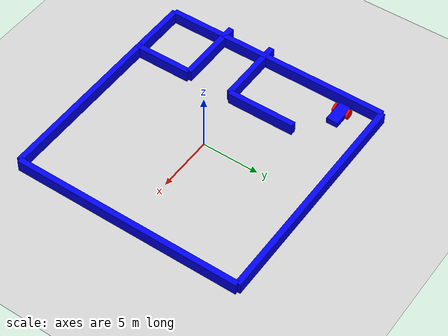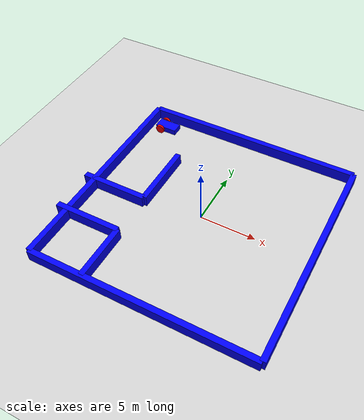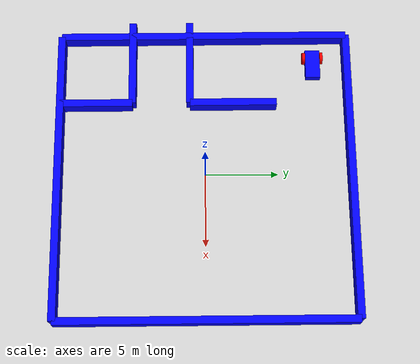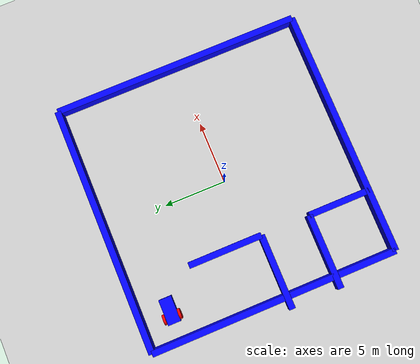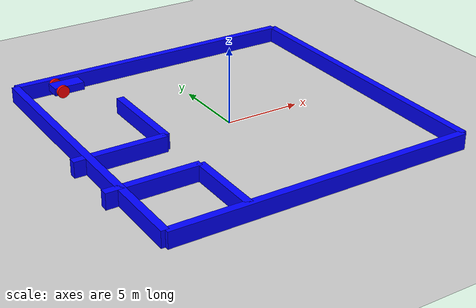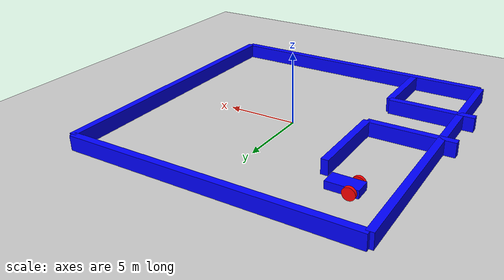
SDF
<?xml version="1.0" ?>
<sdf version="1.8">
    <world name="sensor_world">
        <physics name="1ms" type="ignored">
            <max_step_size>0.001</max_step_size>
            <real_time_factor>1.0</real_time_factor>
        </physics>
        <plugin
            filename="gz-sim-physics-system"
            name="gz::sim::systems::Physics">
        </plugin>
        <plugin
            filename="gz-sim-user-commands-system"
            name="gz::sim::systems::UserCommands">
        </plugin>
        <plugin
            filename="gz-sim-scene-broadcaster-system"
            name="gz::sim::systems::SceneBroadcaster">
        </plugin>
        <plugin
            filename="gz-sim-imu-system"
            name="gz::sim::systems::Imu">
        </plugin>
        <plugin
            filename="gz-sim-sensors-system"
            name="gz::sim::systems::Sensors">
            <render_engine>ogre2</render_engine>
        </plugin>
        <plugin
            filename="gz-sim-contact-system"
            name="gz::sim::systems::Contact">
        </plugin>

        <light type="directional" name="sun">
            <cast_shadows>true</cast_shadows>
            <pose>0 0 10 0 0 0</pose>
            <diffuse>0.8 0.8 0.8 1</diffuse>
            <specular>0.2 0.2 0.2 1</specular>
            <attenuation>
                <range>1000</range>
                <constant>0.9</constant>
                <linear>0.01</linear>
                <quadratic>0.001</quadratic>
            </attenuation>
            <direction>-0.5 0.1 -0.9</direction>
        </light>

        <model name="ground_plane">
            <static>true</static>
            <link name="link">
                <collision name="collision">
                <geometry>
                    <plane>
                    <normal>0 0 1</normal>
                    </plane>
                </geometry>
                </collision>
                <visual name="visual">
                <geometry>
                    <plane>
                    <normal>0 0 1</normal>
                    <size>100 100</size>
                    </plane>
                </geometry>
                <material>
                    <ambient>0.8 0.8 0.8 1</ambient>
                    <diffuse>0.8 0.8 0.8 1</diffuse>
                    <specular>0.8 0.8 0.8 1</specular>
                </material>
                </visual>
            </link>
        </model>

        <model name='vehicle_blue' canonical_link='chassis'>
            <pose relative_to='world'>-8 7.5 1 0 0 0</pose>   <!--the pose is relative to the world by default-->

            <frame name="lidar_frame" attached_to='chassis'>
                <pose>0.8 0 0.5 0 0 0</pose>
            </frame>

            <link name='chassis'>
                <pose relative_to='__model__'>0.5 0 0.4 0 0 0</pose>
                <inertial> <!--inertial properties of the link mass, inertia matix-->
                    <mass>1.14395</mass>
                    <inertia>
                        <ixx>0.126164</ixx>
                        <ixy>0</ixy>
                        <ixz>0</ixz>
                        <iyy>0.416519</iyy>
                        <iyz>0</iyz>
                        <izz>0.481014</izz>
                    </inertia>
                </inertial>
                <visual name='visual'>
                    <geometry>
                        <box>
                            <size>2.0 1.0 0.5</size> <!--question: this size is in meter-->
                        </box>
                    </geometry>
                    <!--let's add color to our link-->
                    <material>
                        <ambient>0.0 0.0 1.0 1</ambient>
                        <diffuse>0.0 0.0 1.0 1</diffuse>
                        <specular>0.0 0.0 1.0 1</specular>
                    </material>
                </visual>
                <collision name='collision'> <!--todo: describe why we need the collision-->
                    <geometry>
                        <box>
                            <size>2.0 1.0 0.5</size>
                        </box>
                    </geometry>
                </collision>
                <sensor name="imu_sensor" type="imu">
                    <always_on>1</always_on>
                    <update_rate>1</update_rate>
                    <visualize>true</visualize>
                    <topic>imu</topic>
                </sensor>
                <sensor name='gpu_lidar' type='gpu_lidar'>"
                    <pose relative_to='lidar_frame'>0 0 0 0 0 0</pose>
                    <topic>scan</topic>
                    <update_rate>10</update_rate>
                    <ray>
                        <scan>
                            <horizontal>
                            <samples>640</samples>
                            <resolution>1</resolution>
                            <min_angle>-1.396263</min_angle>
                            <max_angle>1.396263</max_angle>
                            </horizontal>
                            <vertical>
                            <samples>1</samples>
                            <resolution>0.01</resolution>
                            <min_angle>0</min_angle>
                            <max_angle>0</max_angle>
                            </vertical>
                        </scan>
                    <range>
                        <min>0.08</min>
                        <max>10.0</max>
                        <resolution>0.01</resolution>
                    </range>
                    </ray>
                    <always_on>1</always_on>
                    <visualize>true</visualize>
                </sensor>
            </link>

            <!--let's build the left wheel-->
            <link name='left_wheel'>
                <pose relative_to="chassis">-0.5 0.6 0 -1.5707 0 0</pose> <!--angles are in radian-->
                <inertial>
                    <mass>2</mass>
                    <inertia>
                        <ixx>0.145833</ixx>
                        <ixy>0</ixy>
                        <ixz>0</ixz>
                        <iyy>0.145833</iyy>
                        <iyz>0</iyz>
                        <izz>0.125</izz>
                    </inertia>
                </inertial>
                <visual name='visual'>
                    <geometry>
                        <cylinder>
                            <radius>0.4</radius>
                            <length>0.2</length>
                        </cylinder>
                    </geometry>
                    <material>
                        <ambient>1.0 0.0 0.0 1</ambient>
                        <diffuse>1.0 0.0 0.0 1</diffuse>
                        <specular>1.0 0.0 0.0 1</specular>
                    </material>
                </visual>
                <collision name='collision'>
                    <geometry>
                        <cylinder>
                            <radius>0.4</radius>
                            <length>0.2</length>
                        </cylinder>
                    </geometry>
                </collision>
            </link>

            <!--copy and paste for right wheel but change position-->
            <link name='right_wheel'>
                <pose relative_to="chassis">-0.5 -0.6 0 -1.5707 0 0</pose> <!--angles are in radian-->
                <inertial>
                    <mass>1</mass>
                    <inertia>
                        <ixx>0.145833</ixx>
                        <ixy>0</ixy>
                        <ixz>0</ixz>
                        <iyy>0.145833</iyy>
                        <iyz>0</iyz>
                        <izz>0.125</izz>
                    </inertia>
                </inertial>
                <visual name='visual'>
                    <geometry>
                        <cylinder>
                            <radius>0.4</radius>
                            <length>0.2</length>
                        </cylinder>
                    </geometry>
                    <material>
                        <ambient>1.0 0.0 0.0 1</ambient>
                        <diffuse>1.0 0.0 0.0 1</diffuse>
                        <specular>1.0 0.0 0.0 1</specular>
                    </material>
                </visual>
                <collision name='collision'>
                    <geometry>
                        <cylinder>
                            <radius>0.4</radius>
                            <length>0.2</length>
                        </cylinder>
                    </geometry>
                </collision>
            </link>

            <frame name="caster_frame" attached_to='chassis'>
                <pose>0.8 0 -0.2 0 0 0</pose>
            </frame>

            <!--caster wheel-->
            <link name='caster'>
                <pose relative_to='caster_frame'/>
                <inertial>
                    <mass>1</mass>
                    <inertia>
                        <ixx>0.1</ixx>
                        <ixy>0</ixy>
                        <ixz>0</ixz>
                        <iyy>0.1</iyy>
                        <iyz>0</iyz>
                        <izz>0.1</izz>
                    </inertia>
                </inertial>
                <visual name='visual'>
                    <geometry>
                        <sphere>
                            <radius>0.2</radius>
                        </sphere>
                    </geometry>
                    <material>
                        <ambient>0.0 1 0.0 1</ambient>
                        <diffuse>0.0 1 0.0 1</diffuse>
                        <specular>0.0 1 0.0 1</specular>
                    </material>
                </visual>
                <collision name='collision'>
                    <geometry>
                        <sphere>
                            <radius>0.2</radius>
                        </sphere>
                    </geometry>
                </collision>
            </link>

            <!--connecting these links together using joints-->
            <joint name='left_wheel_joint' type='revolute'> <!--continous joint is not supported yet-->
                <pose relative_to='left_wheel'/>
                <parent>chassis</parent>
                <child>left_wheel</child>
                <axis>
                    <xyz expressed_in='__model__'>0 1 0</xyz> <!--can be descired to any frame or even arbitrary frames-->
                    <limit>
                        <lower>-1.79769e+308</lower>    <!--negative infinity-->
                        <upper>1.79769e+308</upper>     <!--positive infinity-->
                    </limit>
                </axis>
            </joint>

            <joint name='right_wheel_joint' type='revolute'>
                <pose relative_to='right_wheel'/>
                <parent>chassis</parent>
                <child>right_wheel</child>
                <axis>
                    <xyz expressed_in='__model__'>0 1 0</xyz>
                    <limit>
                        <lower>-1.79769e+308</lower>    <!--negative infinity-->
                        <upper>1.79769e+308</upper>     <!--positive infinity-->
                    </limit>
                </axis>
            </joint>

            <!--different type of joints ball joint--> <!--defult value is the child-->
            <joint name='caster_wheel' type='ball'>
                <parent>chassis</parent>
                <child>caster</child>
            </joint>

            <!--diff drive plugin-->
            <plugin
                filename="gz-sim-diff-drive-system"
                name="gz::sim::systems::DiffDrive">
                <left_joint>left_wheel_joint</left_joint>
                <right_joint>right_wheel_joint</right_joint>
                <wheel_separation>1.2</wheel_separation>
                <wheel_radius>0.4</wheel_radius>
                <odom_publish_frequency>1</odom_publish_frequency>
                <topic>cmd_vel</topic>
            </plugin>
        </model>

        <!--Wall1-->
        <model name='wall1'>
            <static>true</static>
            <pose>10 0 0 0 0 0</pose><!--pose relative to the world-->
            <link name='box'>
                <pose/>
                <inertial> <!--inertial properties of the link mass, inertia matix-->
                    <mass>1.14395</mass>
                    <inertia>
                        <ixx>9.532917</ixx>
                        <ixy>0</ixy>
                        <ixz>0</ixz>
                        <iyy>0.023832</iyy>
                        <iyz>0</iyz>
                        <izz>9.556749</izz>
                    </inertia>
                </inertial>
                <visual name='visual'>
                    <geometry>
                        <box>
                            <size>0.5 20.0 2.0</size>
                        </box>
                    </geometry>
                    <!--let's add color to our link-->
                    <material>
                        <ambient>0.0 0.0 1.0 1</ambient>
                        <diffuse>0.0 0.0 1.0 1</diffuse>
                        <specular>0.0 0.0 1.0 1</specular>
                    </material>
                </visual>
                <collision name='collision'> <!--todo: describe why we need the collision-->
                    <geometry>
                        <box>
                            <size>0.5 20.0 2.0</size>
                        </box>
                    </geometry>
                </collision>
                <sensor name='sensor_contact' type='contact'>
                    <contact>
                        <collision>collision</collision>
                    </contact>
                </sensor>
            </link>
            <plugin filename="gz-sim-touchplugin-system"
                    name="gz::sim::systems::TouchPlugin">
                <target>vehicle_blue</target>
                <namespace>wall1</namespace>
                <time>0.001</time>
                <enabled>true</enabled>
            </plugin>
        </model>

        <!--Wall2-->
        <model name='wall2'>
            <static>true</static>
            <pose>-10 0 0 0 0 0</pose><!--pose relative to the world-->
            <link name='box'>
                <pose/>
                <inertial> <!--inertial properties of the link mass, inertia matix-->
                    <mass>1.14395</mass>
                    <inertia>
                        <ixx>9.532917</ixx>
                        <ixy>0</ixy>
                        <ixz>0</ixz>
                        <iyy>0.023832</iyy>
                        <iyz>0</iyz>
                        <izz>9.556749</izz>
                    </inertia>
                </inertial>
                <visual name='visual'>
                    <geometry>
                        <box>
                            <size>0.5 20.0 2.0</size>
                        </box>
                    </geometry>
                    <!--let's add color to our link-->
                    <material>
                        <ambient>0.0 0.0 1.0 1</ambient>
                        <diffuse>0.0 0.0 1.0 1</diffuse>
                        <specular>0.0 0.0 1.0 1</specular>
                    </material>
                </visual>
                <collision name='collision'> <!--todo: describe why we need the collision-->
                    <geometry>
                        <box>
                            <size>0.5 10.0 2.0</size>
                        </box>
                    </geometry>
                </collision>
                <sensor name='sensor_contact' type='contact'>
                    <contact>
                        <collision>collision</collision>
                    </contact>
                </sensor>
            </link>
            <plugin filename="gz-sim-touchplugin-system"
                    name="gz::sim::systems::TouchPlugin">
                <target>vehicle_blue</target>
                <namespace>wall2</namespace>
                <time>0.001</time>
                <enabled>true</enabled>
            </plugin>
        </model>

        <!--Wall3-->
        <model name='wall3'>
            <static>true</static>
            <pose>0 10 0 0 0 0</pose><!--pose relative to the world-->
            <link name='box'>
                <pose/>
                <inertial> <!--inertial properties of the link mass, inertia matix-->
                    <mass>1.14395</mass>
                    <inertia>
                        <ixx>9.532917</ixx>
                        <ixy>0</ixy>
                        <ixz>0</ixz>
                        <iyy>0.023832</iyy>
                        <iyz>0</iyz>
                        <izz>9.556749</izz>
                    </inertia>
                </inertial>
                <visual name='visual'>
                    <geometry>
                        <box>
                            <size>20 0.5 2.0</size>
                        </box>
                    </geometry>
                    <!--let's add color to our link-->
                    <material>
                        <ambient>0.0 0.0 1.0 1</ambient>
                        <diffuse>0.0 0.0 1.0 1</diffuse>
                        <specular>0.0 0.0 1.0 1</specular>
                    </material>
                </visual>
                <collision name='collision'> <!--todo: describe why we need the collision-->
                    <geometry>
                        <box>
                            <size>20 0.5 2.0</size>
                        </box>
                    </geometry>
                </collision>
                <sensor name='sensor_contact' type='contact'>
                    <contact>
                        <collision>collision</collision>
                    </contact>
                </sensor>
            </link>
            <plugin filename="gz-sim-touchplugin-system"
                    name="gz::sim::systems::TouchPlugin">
                <target>vehicle_blue</target>
                <namespace>wall3</namespace>
                <time>0.001</time>
                <enabled>true</enabled>
            </plugin>
        </model>

        <!--Wall4-->
        <model name='wall4'>
            <static>true</static>
            <pose>0 -10 0 0 0 0</pose><!--pose relative to the world-->
            <link name='box'>
                <pose/>
                <inertial> <!--inertial properties of the link mass, inertia matix-->
                    <mass>1.14395</mass>
                    <inertia>
                        <ixx>9.532917</ixx>
                        <ixy>0</ixy>
                        <ixz>0</ixz>
                        <iyy>0.023832</iyy>
                        <iyz>0</iyz>
                        <izz>9.556749</izz>
                    </inertia>
                </inertial>
                <visual name='visual'>
                    <geometry>
                        <box>
                            <size>20 0.5 2.0</size>
                        </box>
                    </geometry>
                    <!--let's add color to our link-->
                    <material>
                        <ambient>0.0 0.0 1.0 1</ambient>
                        <diffuse>0.0 0.0 1.0 1</diffuse>
                        <specular>0.0 0.0 1.0 1</specular>
                    </material>
                </visual>
                <collision name='collision'> <!--todo: describe why we need the collision-->
                    <geometry>
                        <box>
                            <size>20 0.5 2.0</size>
                        </box>
                    </geometry>
                </collision>
                <sensor name='sensor_contact' type='contact'>
                    <contact>
                        <collision>collision</collision>
                    </contact>
                </sensor>
            </link>
            <plugin filename="gz-sim-touchplugin-system"
                    name="gz::sim::systems::TouchPlugin">
                <target>vehicle_blue</target>
                <namespace>wall4</namespace>
                <time>0.001</time>
                <enabled>true</enabled>
            </plugin>
        </model>

        <!--Wall5-->
        <model name='wall5'>
            <static>true</static>
            <pose>-8 -5 0 0 0 0</pose><!--pose relative to the world-->
            <link name='box'>
                <pose/>
                <inertial> <!--inertial properties of the link mass, inertia matix-->
                    <mass>1.14395</mass>
                    <inertia>
                        <ixx>9.532917</ixx>
                        <ixy>0</ixy>
                        <ixz>0</ixz>
                        <iyy>0.023832</iyy>
                        <iyz>0</iyz>
                        <izz>9.556749</izz>
                    </inertia>
                </inertial>
                <visual name='visual'>
                    <geometry>
                        <box>
                            <size>6 0.5 2.0</size>
                        </box>
                    </geometry>
                    <!--let's add color to our link-->
                    <material>
                        <ambient>0.0 0.0 1.0 1</ambient>
                        <diffuse>0.0 0.0 1.0 1</diffuse>
                        <specular>0.0 0.0 1.0 1</specular>
                    </material>
                </visual>
                <collision name='collision'> <!--todo: describe why we need the collision-->
                    <geometry>
                        <box>
                            <size>6 0.5 2.0</size>
                        </box>
                    </geometry>
                </collision>
                <sensor name='sensor_contact' type='contact'>
                    <contact>
                        <collision>collision</collision>
                    </contact>
                </sensor>
            </link>
            <plugin filename="gz-sim-touchplugin-system"
                    name="gz::sim::systems::TouchPlugin">
                <target>vehicle_blue</target>
                <namespace>wall5</namespace>
                <time>0.001</time>
                <enabled>true</enabled>
            </plugin>
        </model>

        <!--Wall6-->
        <model name='wall6'>
            <static>true</static>
            <pose>-8 -1 0 0 0 0</pose><!--pose relative to the world-->
            <link name='box'>
                <pose/>
                <inertial> <!--inertial properties of the link mass, inertia matix-->
                    <mass>1.14395</mass>
                    <inertia>
                        <ixx>9.532917</ixx>
                        <ixy>0</ixy>
                        <ixz>0</ixz>
                        <iyy>0.023832</iyy>
                        <iyz>0</iyz>
                        <izz>9.556749</izz>
                    </inertia>
                </inertial>
                <visual name='visual'>
                    <geometry>
                        <box>
                            <size>6 0.5 2.0</size>
                        </box>
                    </geometry>
                    <!--let's add color to our link-->
                    <material>
                        <ambient>0.0 0.0 1.0 1</ambient>
                        <diffuse>0.0 0.0 1.0 1</diffuse>
                        <specular>0.0 0.0 1.0 1</specular>
                    </material>
                </visual>
                <collision name='collision'> <!--todo: describe why we need the collision-->
                    <geometry>
                        <box>
                            <size>6 0.5 2.0</size>
                        </box>
                    </geometry>
                </collision>
                <sensor name='sensor_contact' type='contact'>
                    <contact>
                        <collision>collision</collision>
                    </contact>
                </sensor>
            </link>
            <plugin filename="gz-sim-touchplugin-system"
                    name="gz::sim::systems::TouchPlugin">
                <target>vehicle_blue</target>
                <namespace>wall6</namespace>
                <time>0.001</time>
                <enabled>true</enabled>
            </plugin>
        </model>

        <!--Wall7-->
        <model name='wall7'>
            <static>true</static>
            <pose>-5 -7.5 0 0 0 0</pose><!--pose relative to the world-->
            <link name='box'>
                <pose/>
                <inertial> <!--inertial properties of the link mass, inertia matix-->
                    <mass>1.14395</mass>
                    <inertia>
                        <ixx>9.532917</ixx>
                        <ixy>0</ixy>
                        <ixz>0</ixz>
                        <iyy>0.023832</iyy>
                        <iyz>0</iyz>
                        <izz>9.556749</izz>
                    </inertia>
                </inertial>
                <visual name='visual'>
                    <geometry>
                        <box>
                            <size>0.5 5.0 2.0</size>
                        </box>
                    </geometry>
                    <!--let's add color to our link-->
                    <material>
                        <ambient>0.0 0.0 1.0 1</ambient>
                        <diffuse>0.0 0.0 1.0 1</diffuse>
                        <specular>0.0 0.0 1.0 1</specular>
                    </material>
                </visual>
                <collision name='collision'> <!--todo: describe why we need the collision-->
                    <geometry>
                        <box>
                            <size>0.5 5.0 2.0</size>
                        </box>
                    </geometry>
                </collision>
                <sensor name='sensor_contact' type='contact'>
                    <contact>
                        <collision>collision</collision>
                    </contact>
                </sensor>
            </link>
            <plugin filename="gz-sim-touchplugin-system"
                    name="gz::sim::systems::TouchPlugin">
                <target>vehicle_blue</target>
                <namespace>wall7</namespace>
                <time>0.001</time>
                <enabled>true</enabled>
            </plugin>
        </model>

        <!--Wall8-->
        <model name='wall8'>
            <static>true</static>
            <pose>-5 2 0 0 0 0</pose><!--pose relative to the world-->
            <link name='box'>
                <pose/>
                <inertial> <!--inertial properties of the link mass, inertia matix-->
                    <mass>1.14395</mass>
                    <inertia>
                        <ixx>9.532917</ixx>
                        <ixy>0</ixy>
                        <ixz>0</ixz>
                        <iyy>0.023832</iyy>
                        <iyz>0</iyz>
                        <izz>9.556749</izz>
                    </inertia>
                </inertial>
                <visual name='visual'>
                    <geometry>
                        <box>
                            <size>0.5 6.0 2.0</size>
                        </box>
                    </geometry>
                    <!--let's add color to our link-->
                    <material>
                        <ambient>0.0 0.0 1.0 1</ambient>
                        <diffuse>0.0 0.0 1.0 1</diffuse>
                        <specular>0.0 0.0 1.0 1</specular>
                    </material>
                </visual>
                <collision name='collision'> <!--todo: describe why we need the collision-->
                    <geometry>
                        <box>
                            <size>0.5 6.0 2.0</size>
                        </box>
                    </geometry>
                </collision>
                <sensor name='sensor_contact' type='contact'>
                    <contact>
                        <collision>collision</collision>
                    </contact>
                </sensor>
            </link>
            <plugin filename="gz-sim-touchplugin-system"
                    name="gz::sim::systems::TouchPlugin">
                <target>vehicle_blue</target>
                <namespace>wall8</namespace>
                <time>0.001</time>
                <enabled>true</enabled>
            </plugin>
        </model>

        <!-- Moving Left-->
        <plugin filename="gz-sim-triggered-publisher-system"
                name="gz::sim::systems::TriggeredPublisher">
            <input type="gz.msgs.Int32" topic="/keyboard/keypress">
                <match field="data">16777234</match>
            </input>
            <output type="gz.msgs.Twist" topic="/cmd_vel">
                linear: {x: 0.0}, angular: {z: 0.5}
            </output>
        </plugin>
        <!-- Moving Forward-->
        <plugin filename="gz-sim-triggered-publisher-system"
                name="gz::sim::systems::TriggeredPublisher">
            <input type="gz.msgs.Int32" topic="/keyboard/keypress">
                <match field="data">16777235</match>
            </input>
            <output type="gz.msgs.Twist" topic="/cmd_vel">
                linear: {x: 0.5}, angular: {z: 0.0}
            </output>
        </plugin>
        <!-- Moving Right-->
        <plugin filename="gz-sim-triggered-publisher-system"
                name="gz::sim::systems::TriggeredPublisher">
            <input type="gz.msgs.Int32" topic="/keyboard/keypress">
                <match field="data">16777236</match>
            </input>
            <output type="gz.msgs.Twist" topic="/cmd_vel">
                linear: {x: 0.0}, angular: {z: -0.5}
            </output>
        </plugin>
        <!-- Moving Backward-->
        <plugin filename="gz-sim-triggered-publisher-system"
                name="gz::sim::systems::TriggeredPublisher">
            <input type="gz.msgs.Int32" topic="/keyboard/keypress">
                <match field="data">16777237</match>
            </input>
            <output type="gz.msgs.Twist" topic="/cmd_vel">
                linear: {x: -0.5}, angular: {z: 0.0}
            </output>
        </plugin>

        <!--stop when hit the wall-->
        <plugin filename="gz-sim-triggered-publisher-system"
                name="gz::sim::systems::TriggeredPublisher">
            <input type="gz.msgs.Boolean" topic="/wall/touched">
                <match>data: true</match>
            </input>
            <output type="gz.msgs.Twist" topic="/cmd_vel">
                linear: {x: 0.0}, angular: {z: 0.0}
            </output>
        </plugin>
    </world>
</sdf>
